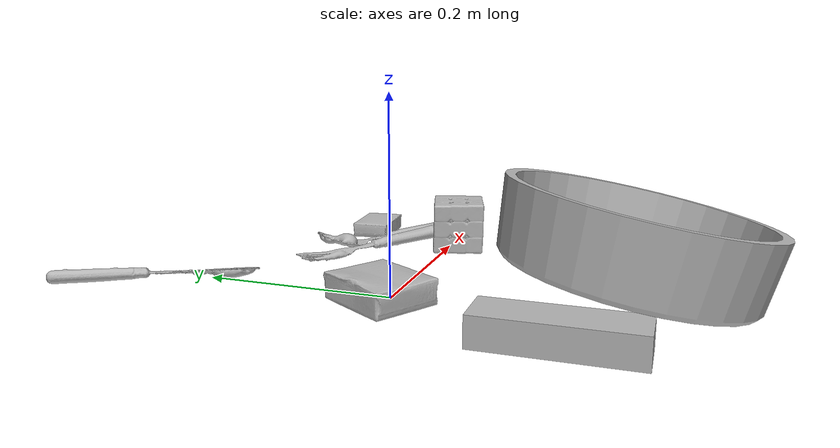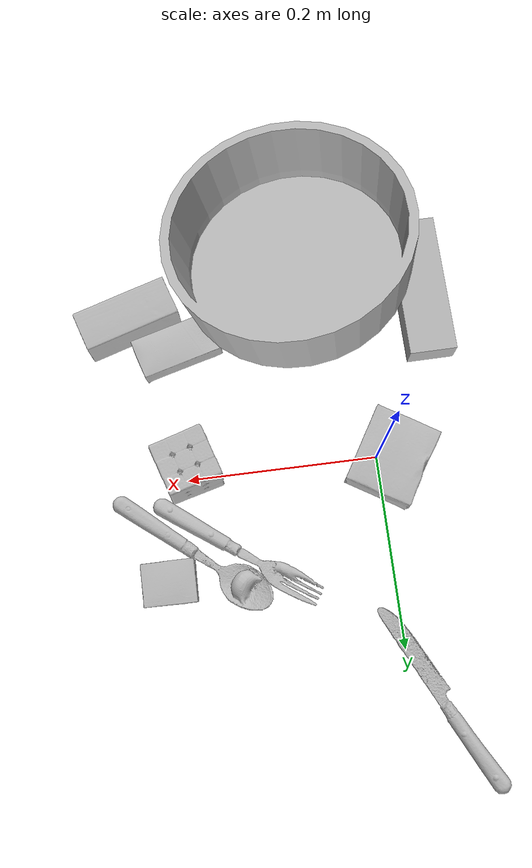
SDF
<sdf version="1.4">
  <world name="default">
    <light name="light1" type="point">
      <pose>0 0 1 0 0 0</pose>
      <diffuse>3 3 3 1</diffuse>
      <specular>3 3 3 1</specular>
    </light>
    <light name="light2" type="point">
      <pose>0 0.5 2 0 0 0</pose>
      <diffuse>1 1 1 1</diffuse>
      <specular>1 1 1 1</specular>
    </light>
    <light name="light3" type="point">
      <pose>0 0.5 2 0 0 0</pose>
      <diffuse>3 3 3 1</diffuse>
      <specular>3 3 3 1</specular>
    </light>
    <scene>
      <ambient>0.7 0.7 0.7</ambient>
    </scene>
    <model name="box11">
      <link name="link_box11">
        <collision name="default">
          <geometry>
            <mesh>
              <uri>model://jenga/collision_meshes/collision.obj</uri>
              <scale>1.0 1.0 1.0</scale>
            </mesh>
          </geometry>
          <surface>
            <friction>
              <ode>
                <mu>0.5</mu>
                <mu2>0.5</mu2>
              </ode>
            </friction>
          <contact>
        <ode>
            <max_vel>0</max_vel>
            <min_depth>0.0001</min_depth>
            <kp>1e8</kp>
        </ode>
    </contact></surface>
        </collision>
        <visual name="default">
          <geometry>
            <mesh>
              <uri>model://jenga/visual_meshes/visual.dae</uri>
              <scale>1.0 1.0 1.0</scale>
            </mesh>
          </geometry>
        </visual>
        <inertial>
          <mass>0.22063912451267242</mass>
          <pose>-2.502855807051674e-07 -0.00010250011109746993 -4.0923405322246253e-05 0.0 -7.34215461761844e-07 0.0</pose>
          <inertia>
            <ixx>6.1056206e-05</ixx>
            <iyy>0.00041371517</iyy>
            <izz>0.00044167612</izz>
            <ixy>0</ixy>
            <ixz>0</ixz>
            <iyz>0</iyz>
          </inertia>
        </inertial>
      </link>
      <pose>-0.07333705574274063 -0.175669327378273 0.014999900944530964 -0.00011120346120648183 -1.3762449990551802e-05 1.5808029253559757</pose>
    </model>
    <model name="box12">
      <link name="link_box12">
        <collision name="default">
          <geometry>
            <mesh>
              <uri>model://sugar_box/collision_meshes/collision.obj</uri>
              <scale>0.5 0.5 0.5</scale>
            </mesh>
          </geometry>
          <surface>
            <friction>
              <ode>
                <mu>0.5</mu>
                <mu2>0.5</mu2>
              </ode>
            </friction>
          <contact>
        <ode>
            <max_vel>0</max_vel>
            <min_depth>0.0001</min_depth>
            <kp>1e8</kp>
        </ode>
    </contact></surface>
        </collision>
        <visual name="default">
          <geometry>
            <mesh>
              <uri>model://sugar_box/visual_meshes/visual.dae</uri>
              <scale>0.5 0.5 0.5</scale>
            </mesh>
          </geometry>
        </visual>
        <inertial>
          <mass>0.053318966180086136</mass>
          <pose>0.0005171863595023751 1.924554817378521e-05 -0.00018182402709499002 -0.00040462627129080113 0.001050663522124822 0.0026153787889376494</pose>
          <inertia>
            <ixx>1.1106302e-05</ixx>
            <iyy>3.5897858e-05</iyy>
            <izz>4.2974014e-05</izz>
            <ixy>0</ixy>
            <ixz>0</ixz>
            <iyz>0</iyz>
          </inertia>
        </inertial>
      </link>
      <pose>0.1960575133562088 -0.1447303146123886 0.011597378179430962 0.0356546323532946 -0.019361869565215475 0.27338831396052266</pose>
    </model>
    <model name="box13">
      <link name="link_box13">
        <collision name="default">
          <geometry>
            <mesh>
              <uri>model://gelatin_box/collision_meshes/collision.obj</uri>
              <scale>1.0 1.0 1.0</scale>
            </mesh>
          </geometry>
          <surface>
            <friction>
              <ode>
                <mu>0.5</mu>
                <mu2>0.5</mu2>
              </ode>
            </friction>
          <contact>
        <ode>
            <max_vel>0</max_vel>
            <min_depth>0.0001</min_depth>
            <kp>1e8</kp>
        </ode>
    </contact></surface>
        </collision>
        <visual name="default">
          <geometry>
            <mesh>
              <uri>model://gelatin_box/visual_meshes/visual.dae</uri>
              <scale>1.0 1.0 1.0</scale>
            </mesh>
          </geometry>
        </visual>
        <inertial>
          <mass>0.19111748039722443</mass>
          <pose>0.0004319618456065655 0.00011156871914863586 -0.00036403207923285663 -0.0010503719765995955 -0.004755818690324038 0.01644055947160125</pose>
          <inertia>
            <ixx>0.00013491335</ixx>
            <iyy>9.63679e-05</iyy>
            <izz>0.00020536821</izz>
            <ixy>0</ixy>
            <ixz>0</ixz>
            <iyz>0</iyz>
          </inertia>
        </inertial>
      </link>
      <pose>-0.015013773925602436 0.004754785448312759 0.015168312005698681 0.005597490799714198 -0.00730454056815848 2.583096924839529</pose>
    </model>
    <model name="box21">
      <link name="link_box21">
        <collision name="default">
          <geometry>
            <mesh>
              <uri>model://pudding_box/collision_meshes/collision.obj</uri>
              <scale>0.5 0.5 0.5</scale>
            </mesh>
          </geometry>
          <surface>
            <friction>
              <ode>
                <mu>0.5</mu>
                <mu2>0.5</mu2>
              </ode>
            </friction>
          <contact>
        <ode>
            <max_vel>0</max_vel>
            <min_depth>0.0001</min_depth>
            <kp>1e8</kp>
        </ode>
    </contact></surface>
        </collision>
        <visual name="default">
          <geometry>
            <mesh>
              <uri>model://pudding_box/visual_meshes/visual.dae</uri>
              <scale>0.5 0.5 0.5</scale>
            </mesh>
          </geometry>
        </visual>
        <inertial>
          <mass>0.037507444620132446</mass>
          <pose>0.00024474109522998333 0.0004033942532259971 -0.0002594413817860186 0.00521310221980129 -0.006603800139852783 0.020079832606434308</pose>
          <inertia>
            <ixx>1.0600058e-05</ixx>
            <iyy>7.131795e-06</iyy>
            <izz>1.5653754e-05</izz>
            <ixy>0</ixy>
            <ixz>0</ixz>
            <iyz>0</iyz>
          </inertia>
        </inertial>
      </link>
      <pose>0.2294834852218628 0.1044313907623291 0.009862902574241161 0.02234855579083933 -0.011391726861407827 -1.5800094215264762</pose>
    </model>
    <model name="box22">
      <link name="link_box22">
        <collision name="default">
          <geometry>
            <mesh>
              <uri>model://rubiks_cube/collision_meshes/collision.obj</uri>
              <scale>1.0 1.0 1.0</scale>
            </mesh>
          </geometry>
          <surface>
            <friction>
              <ode>
                <mu>0.5</mu>
                <mu2>0.5</mu2>
              </ode>
            </friction>
          <contact>
        <ode>
            <max_vel>0</max_vel>
            <min_depth>0.0001</min_depth>
            <kp>1e8</kp>
        </ode>
    </contact></surface>
        </collision>
        <visual name="default">
          <geometry>
            <mesh>
              <uri>model://rubiks_cube/visual_meshes/visual.dae</uri>
              <scale>1.0 1.0 1.0</scale>
            </mesh>
          </geometry>
        </visual>
        <inertial>
          <mass>0.19412381947040558</mass>
          <pose>2.6721041649580002e-05 5.2569666877388954e-05 -7.264316082000732e-06 -0.05467327462967597 -0.09814157667114887 -0.034454893398498845</pose>
          <inertia>
            <ixx>0.000107266445</ixx>
            <iyy>0.0001067662</iyy>
            <izz>0.00010815532</izz>
            <ixy>0</ixy>
            <ixz>0</ixz>
            <iyz>0</iyz>
          </inertia>
        </inertial>
      </link>
      <pose>0.19683369994163513 -0.011643508449196815 0.028678888455033302 -6.9443383262121666e-06 -2.9643057190253164e-06 -1.2816612324667815</pose>
    </model>
    <model name="box23">
      <link name="link_box23">
        <collision name="default">
          <geometry>
            <mesh>
              <uri>model://wood_block/collision_meshes/collision.obj</uri>
              <scale>0.5 0.5 0.5</scale>
            </mesh>
          </geometry>
          <surface>
            <friction>
              <ode>
                <mu>0.5</mu>
                <mu2>0.5</mu2>
              </ode>
            </friction>
          <contact>
        <ode>
            <max_vel>0</max_vel>
            <min_depth>0.0001</min_depth>
            <kp>1e8</kp>
        </ode>
    </contact></surface>
        </collision>
        <visual name="default">
          <geometry>
            <mesh>
              <uri>model://wood_block/visual_meshes/visual.dae</uri>
              <scale>0.5 0.5 0.5</scale>
            </mesh>
          </geometry>
        </visual>
        <inertial>
          <mass>0.12021861970424652</mass>
          <pose>-2.9066577553749084e-06 -0.000285404734313488 0.00013204291462898254 -0.05220783851692058 -0.005192695246339916 -0.006861377900732038</pose>
          <inertia>
            <ixx>4.0217674e-05</ixx>
            <iyy>0.00012704768</iyy>
            <izz>0.00012657243</izz>
            <ixy>0</ixy>
            <ixz>0</ixz>
            <iyz>0</iyz>
          </inertia>
        </inertial>
      </link>
      <pose>0.24387377500534058 -0.17826221883296967 0.022628920152783394 -0.005101076579145083 0.005733116043615595 0.3025800720505676</pose>
    </model>
    <model name="plate1">
      <link name="link_plate1">
        <collision name="default">
          <geometry>
            <mesh>
              <uri>model://pan_tefal/collision_meshes/collision.obj</uri>
              <scale>1.0 1.0 1.0</scale>
            </mesh>
          </geometry>
          <surface>
            <friction>
              <ode>
                <mu>0.5</mu>
                <mu2>0.5</mu2>
              </ode>
            </friction>
          <contact>
        <ode>
            <max_vel>0</max_vel>
            <min_depth>0.0001</min_depth>
            <kp>1e8</kp>
        </ode>
    </contact></surface>
        </collision>
        <visual name="default">
          <geometry>
            <mesh>
              <uri>model://pan_tefal/visual_meshes/visual.dae</uri>
              <scale>1.0 1.0 1.0</scale>
            </mesh>
          </geometry>
        </visual>
        <inertial>
          <mass>1.1174349784851074</mass>
          <pose>-0.0001800186582840979 3.278696021880023e-05 -0.00851493701338768 0.0008190242272949328 -0.00033013996347192336 -0.33186114310704434</pose>
          <inertia>
            <ixx>0.0077136005</ixx>
            <iyy>0.0077633304</iyy>
            <izz>0.014199255</izz>
            <ixy>0</ixy>
            <ixz>0</ixz>
            <iyz>0</iyz>
          </inertia>
        </inertial>
      </link>
      <pose>0.06196516752243042 -0.22231213748455048 0.06128775328397751 -0.2069725356274958 0.0435060952862912 -2.391771610320572</pose>
    </model>
    <model name="silverware1">
      <link name="link_silverware1">
        <collision name="default">
          <geometry>
            <mesh>
              <uri>model://spoon/collision_meshes/collision.obj</uri>
              <scale>1.0 1.0 1.0</scale>
            </mesh>
          </geometry>
          <surface>
            <friction>
              <ode>
                <mu>0.5</mu>
                <mu2>0.5</mu2>
              </ode>
            </friction>
          <contact>
        <ode>
            <max_vel>0</max_vel>
            <min_depth>0.0001</min_depth>
            <kp>1e8</kp>
        </ode>
    </contact></surface>
        </collision>
        <visual name="default">
          <geometry>
            <mesh>
              <uri>model://spoon/visual_meshes/visual.dae</uri>
              <scale>1.0 1.0 1.0</scale>
            </mesh>
          </geometry>
        </visual>
        <inertial>
          <mass>0.03790392354130745</mass>
          <pose>-0.005526311695575714 -0.0016034170985221863 -0.0007271655485965312 0.03521845899657386 -0.039065840459698326 0.006150612465639116</pose>
          <inertia>
            <ixx>2.1082776e-06</ixx>
            <iyy>0.00014422317</iyy>
            <izz>0.00014526285</izz>
            <ixy>0</ixy>
            <ixz>0</ixz>
            <iyz>0</iyz>
          </inertia>
        </inertial>
      </link>
      <pose>0.20123642683029175 0.07435552030801773 0.008385262452065945 0.006729265484551129 0.026892967322838073 2.4358005227069133</pose>
    </model>
    <model name="silverware2">
      <link name="link_silverware2">
        <collision name="default">
          <geometry>
            <mesh>
              <uri>model://fork/collision_meshes/collision.obj</uri>
              <scale>1.0 1.0 1.0</scale>
            </mesh>
          </geometry>
          <surface>
            <friction>
              <ode>
                <mu>0.5</mu>
                <mu2>0.5</mu2>
              </ode>
            </friction>
          <contact>
        <ode>
            <max_vel>0</max_vel>
            <min_depth>0.0001</min_depth>
            <kp>1e8</kp>
        </ode>
    </contact></surface>
        </collision>
        <visual name="default">
          <geometry>
            <mesh>
              <uri>model://fork/visual_meshes/visual.dae</uri>
              <scale>1.0 1.0 1.0</scale>
            </mesh>
          </geometry>
        </visual>
        <inertial>
          <mass>0.029004188254475594</mass>
          <pose>-0.02957005612552166 0.0004658824182115495 0.00032188621116802096 -0.013551880215526314 -0.010977843078655252 0.014453906566097012</pose>
          <inertia>
            <ixx>1.0167608e-06</ixx>
            <iyy>7.572158e-05</iyy>
            <izz>7.617634e-05</izz>
            <ixy>0</ixy>
            <ixz>0</ixz>
            <iyz>0</iyz>
          </inertia>
        </inertial>
      </link>
      <pose>0.15818026661872864 0.07930833101272583 0.005249602720141411 -0.017103761578816382 0.04927543336598994 2.496780464531354</pose>
    </model>
    <model name="silverware3">
      <link name="link_silverware3">
        <collision name="default">
          <geometry>
            <mesh>
              <uri>model://knife/collision_meshes/collision.obj</uri>
              <scale>1.0 1.0 1.0</scale>
            </mesh>
          </geometry>
          <surface>
            <friction>
              <ode>
                <mu>0.5</mu>
                <mu2>0.5</mu2>
              </ode>
            </friction>
          <contact>
        <ode>
            <max_vel>0</max_vel>
            <min_depth>0.0001</min_depth>
            <kp>1e8</kp>
        </ode>
    </contact></surface>
        </collision>
        <visual name="default">
          <geometry>
            <mesh>
              <uri>model://knife/visual_meshes/visual.dae</uri>
              <scale>1.0 1.0 1.0</scale>
            </mesh>
          </geometry>
        </visual>
        <inertial>
          <mass>0.015800314024090767</mass>
          <pose>-0.023785250261425972 0.0015275126788765192 5.0620288675418124e-05 0.07305498599936577 0.01724841842216061 -0.0074098211805850795</pose>
          <inertia>
            <ixx>4.48477e-07</ixx>
            <iyy>6.0702252e-05</iyy>
            <izz>6.0846694e-05</izz>
            <ixy>0</ixy>
            <ixz>0</ixz>
            <iyz>0</iyz>
          </inertia>
        </inertial>
      </link>
      <pose>-0.029460621997714043 0.25037866830825806 0.008136809803545475 -0.28174741261824277 -0.008871666291245061 -1.10821559730531</pose>
    </model>
  <physics type="ode">
      <max_contacts>50</max_contacts>
      <ode>
        <solver>
          <type>quick</type>
          <iters>75</iters>
        </solver>
        <constraints>
          <contact_max_correcting_vel>0</contact_max_correcting_vel>
          <contact_surface_layer>0</contact_surface_layer>
        </constraints>
      </ode>
    </physics></world>
</sdf>
